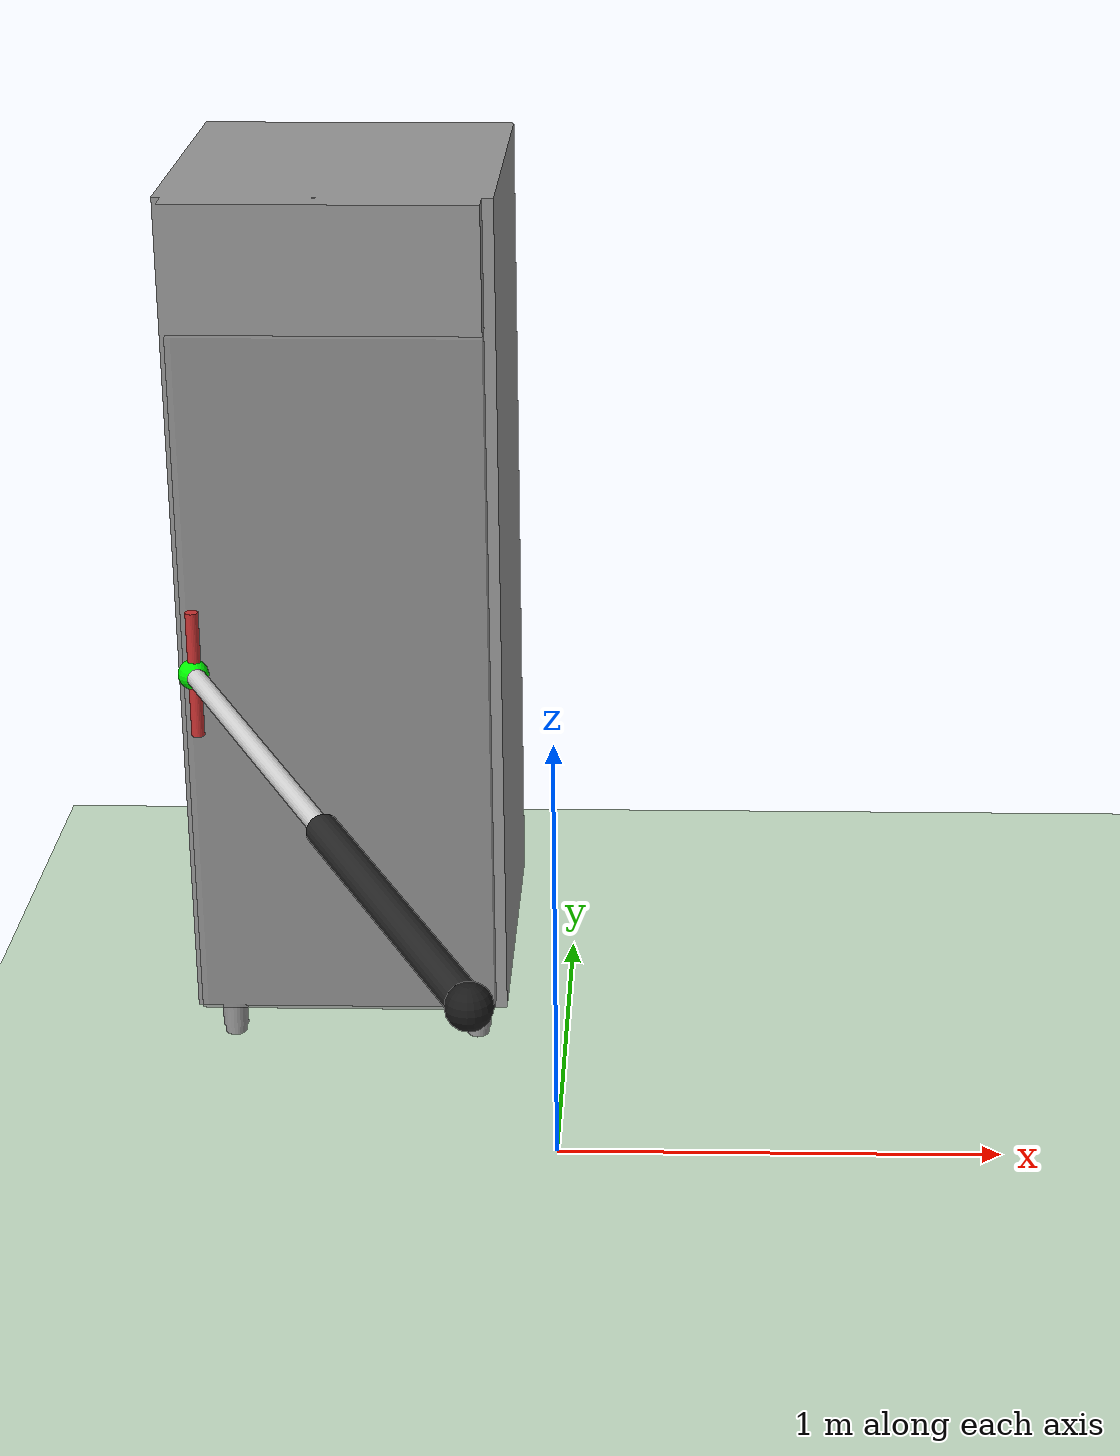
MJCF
<mujoco model="Test_electrolux_pneumatic_cylinder">

  <compiler angle="radian"/>

  <option timestep="0.002" gravity="0 0 -9.81"/>

  <asset>
    <mesh name="frigo_mesh" file="electrolux_corpo.obj"/>
    <mesh name="porta_mesh" file="electrolux_porta.obj"/>
  </asset>

  <worldbody>
    <geom name="pavimento" type="plane" size="5 5 0.1" rgba="0.8 0.9 0.8 1"/>
    <light directional="true" diffuse="0.8 0.8 0.8" specular="0.2 0.2 0.2" pos="0 0 5" dir="0 0 -1" castshadow="false"/>

    <body name="supporto_pneumatico" pos="-0.1 -1.15 1.00">
        <geom name="supporto_base" type="sphere" size="0.045" rgba="0.1 0.1 0.1 1" contype="0" conaffinity="0"/>
        <site name="snodo_fisso_cilindro" pos="0 0 0" size="0.035" rgba="1 0 0 1"/>

        <body name="canna_cilindro" pos="0 0 0" zaxis="-0.43 0.90 0">
            <joint name="snodo_base_cilindro" type="ball" damping="0.05"/>
            <inertial pos="0 0 0.40" mass="1.5" diaginertia="0.035 0.035 0.006"/>
            <geom name="canna_visual" type="cylinder" pos="0 0 0.40" size="0.035 0.40" rgba="0.15 0.15 0.15 1" contype="0" conaffinity="0"/>

            <body name="stelo_cilindro" pos="0 0 0">
            <joint name="corsa_cilindro" type="slide" axis="0 0 -1" range="0 0.65" limited="true" damping="20" frictionloss="5"/>
            <inertial pos="0 0 1.25" mass="0.8" diaginertia="0.018 0.018 0.003"/>
            <geom name="stelo_visual" type="cylinder" pos="0 0 1.25" size="0.022 0.45" rgba="0.85 0.85 0.85 1" contype="0" conaffinity="0"/>
            <site name="punta_stelo" pos="0 0 1.70" size="0.035" rgba="0 1 0 1"/>
            <geom name="snodo_mobile_visual" type="sphere" pos="0 0 1.70" size="0.035" rgba="0 1 0 1" contype="0" conaffinity="0"/>
            </body>
        </body>
    </body>

    <body name="banco_frigo" pos="-0.9 0.4 0">
      <geom type="mesh" mesh="frigo_mesh" rgba="0.6 0.6 0.6 1" contype="0" conaffinity="0"/>

      <body name="porta" pos="0 0 0">
        <joint name="giunto_porta" type="hinge" pos="0.72 0.03 0" axis="0 0 1" range="0 3.1415" limited="true" damping="2.0" frictionloss="6.206" stiffness="0" springref="0"/>
        <inertial pos="0.36 0 0.83" mass="15" diaginertia="2.0 2.0 2.45"/>
        <geom type="mesh" mesh="porta_mesh" rgba="0.6 0.6 0.6 0.8" contype="1" conaffinity="1"/>

        <body name="maniglia_body" pos="0.07 -0.015 1.0">
          <inertial pos="0 0 0" mass="0.2" diaginertia="0.001 0.001 0.001"/>
          <geom name="maniglia" type="cylinder" size="0.015 0.15" rgba="0.8 0.2 0.2 1" contype="0" conaffinity="0"/>
          <site name="target_maniglia" pos="0 0 0" size="0.025" rgba="1 0 0 0.5"/>
        </body>
      </body>
    </body>
  </worldbody>

  <equality>
    <connect name="snodo_stelo_maniglia" site1="punta_stelo" site2="target_maniglia" solimp="0.9 0.95 0.001" solref="0.02 1"/>
  </equality>

  <actuator>
    <motor name="forza_pneumatica" joint="corsa_cilindro" gear="1" ctrllimited="true" ctrlrange="-500 500"/>
  </actuator>

  <!-- Sensori -->
  <sensor>
    <jointpos name="angolo_porta" joint="giunto_porta"/>
    <jointvel name="velocita_porta" joint="giunto_porta"/>
    <jointpos name="estensione_cilindro" joint="corsa_cilindro"/>
    <jointvel name="velocita_stelo" joint="corsa_cilindro"/>
    <framepos name="posizione_punta_stelo" objtype="site" objname="punta_stelo"/>
    <framepos name="posizione_maniglia" objtype="site" objname="target_maniglia"/>
  </sensor>

</mujoco>
